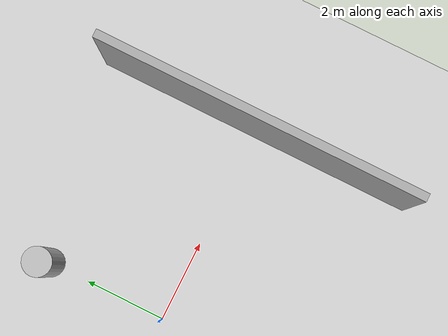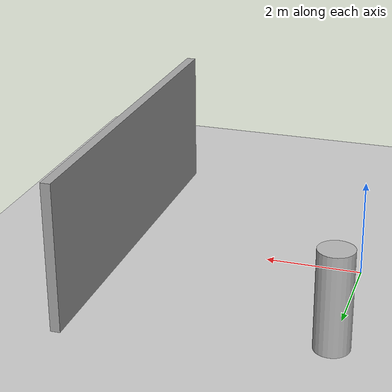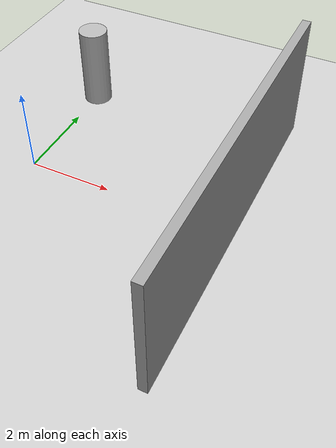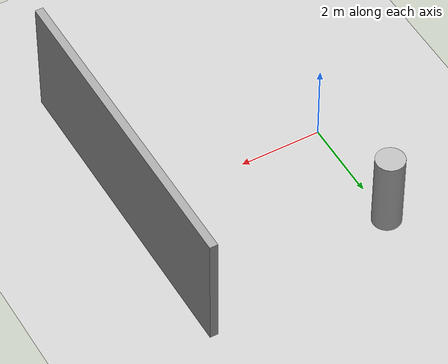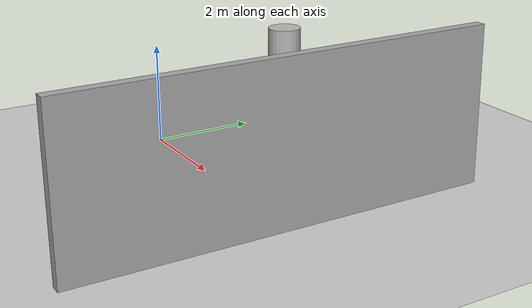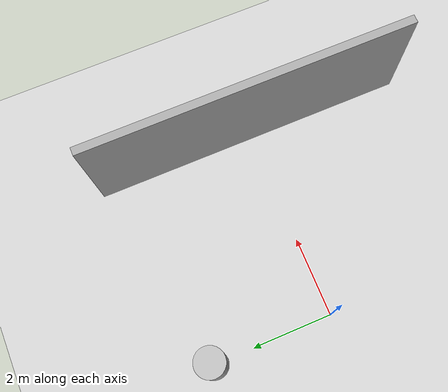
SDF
<?xml version="1.0" ?>
<sdf version="1.9">
  <world name="m1_registration_test">
    <physics name="default_physics" type="ignored">
      <max_step_size>0.001</max_step_size>
      <real_time_factor>1.0</real_time_factor>
    </physics>
    <plugin filename="gz-sim-physics-system" name="gz::sim::systems::Physics"/>
    <plugin filename="gz-sim-user-commands-system" name="gz::sim::systems::UserCommands"/>
    <plugin filename="gz-sim-scene-broadcaster-system" name="gz::sim::systems::SceneBroadcaster"/>
    <light type="directional" name="sun">
      <cast_shadows>true</cast_shadows>
      <pose>0 0 10 0 0 0</pose>
      <diffuse>0.8 0.8 0.8 1</diffuse>
      <specular>0.2 0.2 0.2 1</specular>
      <direction>-0.5 0.1 -0.9</direction>
    </light>
    <model name="ground">
      <static>true</static>
      <link name="link">
        <collision name="collision"><geometry><plane><normal>0 0 1</normal><size>100 100</size></plane></geometry></collision>
        <visual name="visual"><geometry><plane><normal>0 0 1</normal><size>100 100</size></plane></geometry></visual>
      </link>
    </model>
    <model name="reference_wall">
      <static>true</static>
      <pose>5 0 1.5 0 0 0</pose>
      <link name="link">
        <collision name="collision"><geometry><box><size>0.2 8 3</size></box></geometry></collision>
        <visual name="visual"><geometry><box><size>0.2 8 3</size></box></geometry><material><diffuse>0.65 0.65 0.65 1</diffuse></material></visual>
      </link>
    </model>
    <model name="reference_pillar">
      <static>true</static>
      <pose>0 3 1 0 0 0</pose>
      <link name="link">
        <collision name="collision"><geometry><cylinder><radius>0.35</radius><length>2</length></cylinder></geometry></collision>
        <visual name="visual"><geometry><cylinder><radius>0.35</radius><length>2</length></cylinder></geometry></visual>
      </link>
    </model>
  </world>
</sdf>
